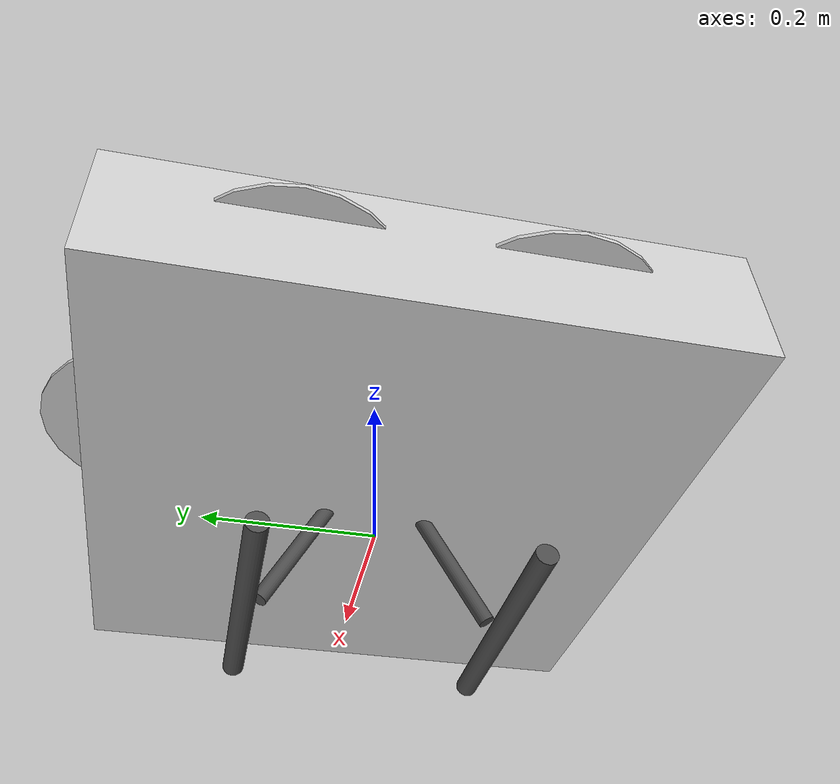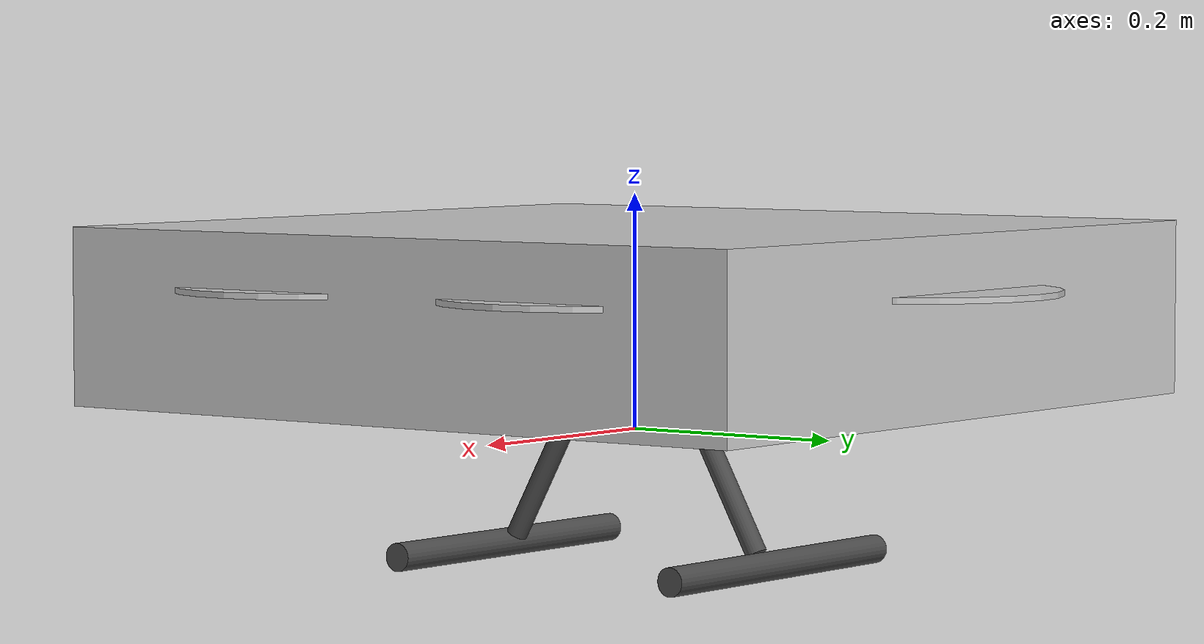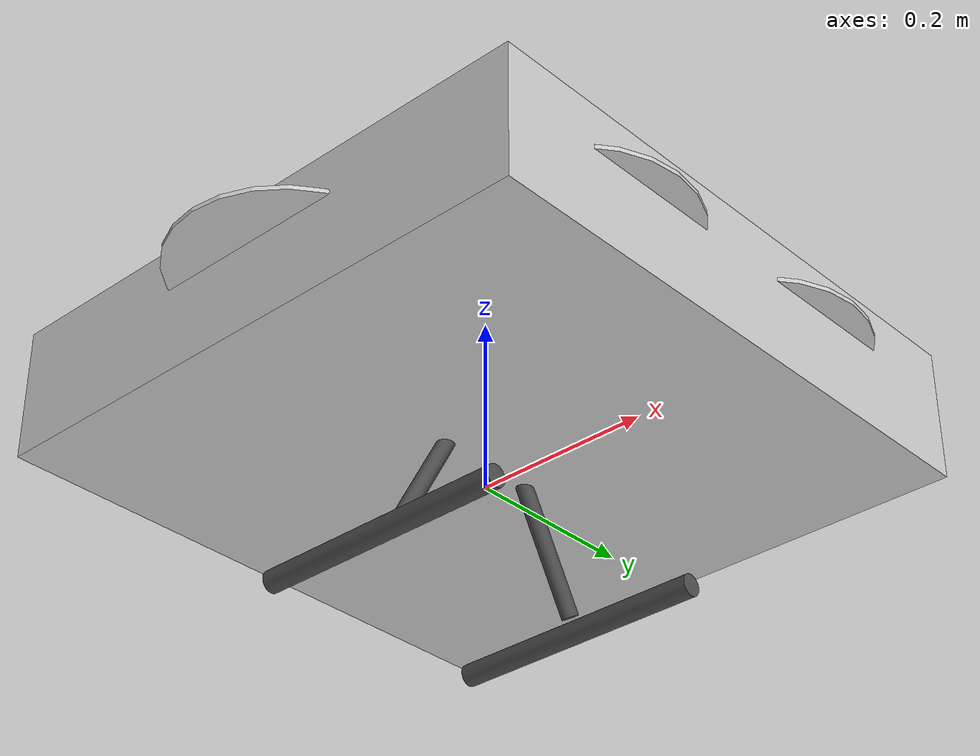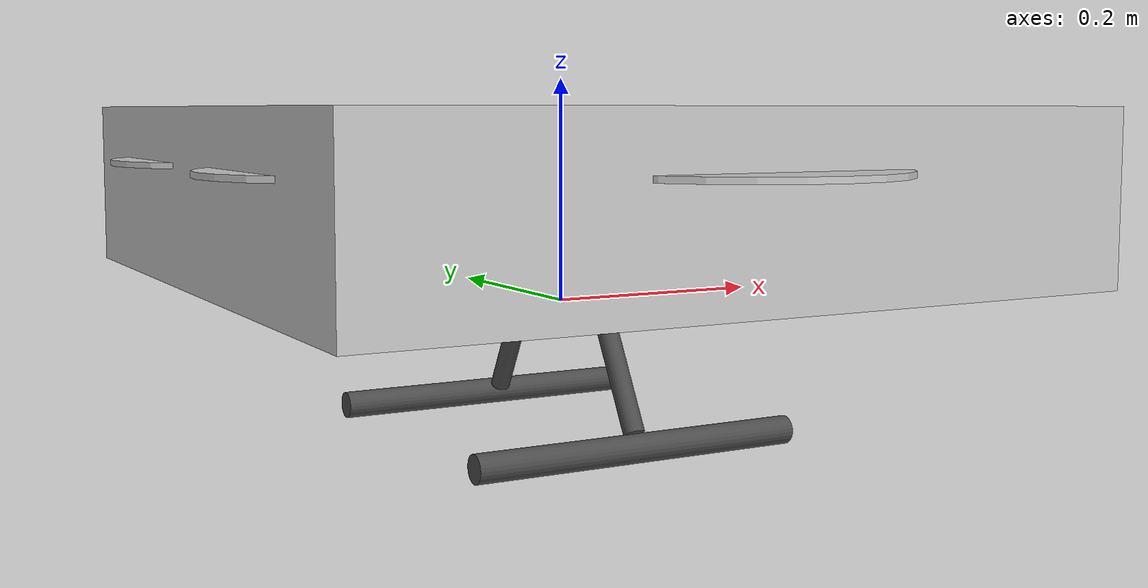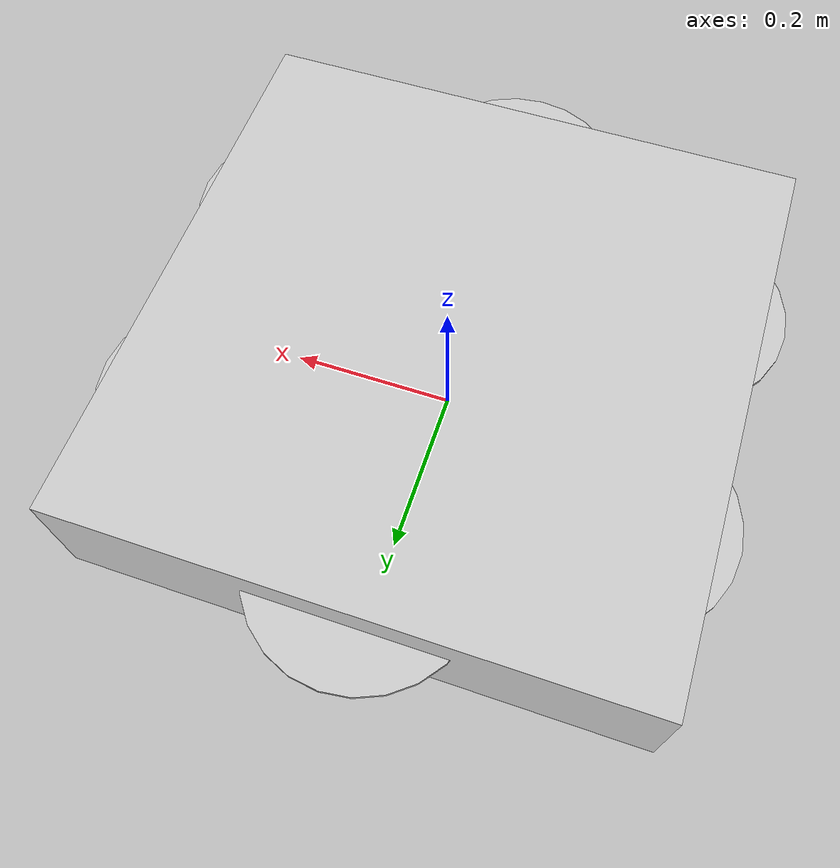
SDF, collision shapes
<?xml version='1.0'?>
<sdf version="1.9">
  <model name="DJI550_with_ardupilot">
    <include>
      <uri>model://DJI550_with_standoffs</uri>
    </include>

    <!--
      visual markers for debugging
      - blade root    - teal
      - blade tip     - orange
      - blade cp      - yellow
      - blade forward - red
      - blade upward  - blue
    -->

    <!-- plugins -->
    <plugin filename="gz-sim-joint-state-publisher-system"
      name="gz::sim::systems::JointStatePublisher">
    </plugin>
    <plugin filename="gz-sim-lift-drag-system"
        name="gz::sim::systems::LiftDrag">
      <a0>0.3</a0>
      <alpha_stall>1.4</alpha_stall>
      <cla>4.2500</cla>
      <cda>0.10</cda>
      <cma>0.0</cma>
      <cla_stall>-0.025</cla_stall>
      <cda_stall>0.0</cda_stall>
      <cma_stall>0.0</cma_stall>
      <area>0.0035</area>
      <air_density>1.2041</air_density>
      <cp>0.084 0 0</cp>
      <forward>0 1 0</forward>
      <upward>0 0 1</upward>
      <link_name>DJI550_with_standoffs::rotor_0</link_name>
    </plugin>
    <plugin filename="gz-sim-lift-drag-system"
        name="gz::sim::systems::LiftDrag">
      <a0>0.3</a0>
      <alpha_stall>1.4</alpha_stall>
      <cla>4.2500</cla>
      <cda>0.10</cda>
      <cma>0.0</cma>
      <cla_stall>-0.025</cla_stall>
      <cda_stall>0.0</cda_stall>
      <cma_stall>0.0</cma_stall>
      <area>0.0035</area>
      <air_density>1.2041</air_density>
      <cp>-0.084 0 0</cp>
      <forward>0 -1 0</forward>
      <upward>0 0 1</upward>
      <link_name>DJI550_with_standoffs::rotor_0</link_name>
    </plugin>

    <plugin filename="gz-sim-lift-drag-system"
        name="gz::sim::systems::LiftDrag">
      <a0>0.3</a0>
      <alpha_stall>1.4</alpha_stall>
      <cla>4.2500</cla>
      <cda>0.10</cda>
      <cma>0.0</cma>
      <cla_stall>-0.025</cla_stall>
      <cda_stall>0.0</cda_stall>
      <cma_stall>0.0</cma_stall>
      <area>0.0035</area>
      <air_density>1.2041</air_density>
      <cp>0.084 0 0</cp>
      <forward>0 -1 0</forward>
      <upward>0 0 1</upward>
      <link_name>DJI550_with_standoffs::rotor_1</link_name>
    </plugin>
    <plugin filename="gz-sim-lift-drag-system"
        name="gz::sim::systems::LiftDrag">
      <a0>0.3</a0>
      <alpha_stall>1.4</alpha_stall>
      <cla>4.2500</cla>
      <cda>0.10</cda>
      <cma>0.0</cma>
      <cla_stall>-0.025</cla_stall>
      <cda_stall>0.0</cda_stall>
      <cma_stall>0.0</cma_stall>
      <area>0.0035</area>
      <air_density>1.2041</air_density>
      <cp>-0.084 0 0</cp>
      <forward>0 1 0</forward>
      <upward>0 0 1</upward>
      <link_name>DJI550_with_standoffs::rotor_1</link_name>
    </plugin>

    <plugin filename="gz-sim-lift-drag-system"
        name="gz::sim::systems::LiftDrag">
      <a0>0.3</a0>
      <alpha_stall>1.4</alpha_stall>
      <cla>4.2500</cla>
      <cda>0.10</cda>
      <cma>0.0</cma>
      <cla_stall>-0.025</cla_stall>
      <cda_stall>0.0</cda_stall>
      <cma_stall>0.0</cma_stall>
      <area>0.0035</area>
      <air_density>1.2041</air_density>
      <cp>0.084 0 0</cp>
      <forward>0 -1 0</forward>
      <upward>0 0 1</upward>
      <link_name>DJI550_with_standoffs::rotor_2</link_name>
    </plugin>
    <plugin filename="gz-sim-lift-drag-system"
        name="gz::sim::systems::LiftDrag">
      <a0>0.3</a0>
      <alpha_stall>1.4</alpha_stall>
      <cla>4.2500</cla>
      <cda>0.10</cda>
      <cma>0.0</cma>
      <cla_stall>-0.025</cla_stall>
      <cda_stall>0.0</cda_stall>
      <cma_stall>0.0</cma_stall>
      <area>0.0035</area>
      <air_density>1.2041</air_density>
      <cp>-0.084 0 0</cp>
      <forward>0 1 0</forward>
      <upward>0 0 1</upward>
      <link_name>DJI550_with_standoffs::rotor_2</link_name>
    </plugin>

    <plugin filename="gz-sim-lift-drag-system"
        name="gz::sim::systems::LiftDrag">
      <a0>0.3</a0>
      <alpha_stall>1.4</alpha_stall>
      <cla>4.2500</cla>
      <cda>0.10</cda>
      <cma>0.0</cma>
      <cla_stall>-0.025</cla_stall>
      <cda_stall>0.0</cda_stall>
      <cma_stall>0.0</cma_stall>
      <area>0.0035</area>
      <air_density>1.2041</air_density>
      <cp>0.084 0 0</cp>
      <forward>0 1 0</forward>
      <upward>0 0 1</upward>
      <link_name>DJI550_with_standoffs::rotor_3</link_name>
    </plugin>
    <plugin filename="gz-sim-lift-drag-system"
        name="gz::sim::systems::LiftDrag">
      <a0>0.3</a0>
      <alpha_stall>1.4</alpha_stall>
      <cla>4.2500</cla>
      <cda>0.10</cda>
      <cma>0.0</cma>
      <cla_stall>-0.025</cla_stall>
      <cda_stall>0.0</cda_stall>
      <cma_stall>0.0</cma_stall>
      <area>0.0035</area>
      <air_density>1.2041</air_density>
      <cp>-0.084 0 0</cp>
      <forward>0 -1 0</forward>
      <upward>0 0 1</upward>
      <link_name>DJI550_with_standoffs::rotor_3</link_name>
    </plugin>

    <plugin filename="gz-sim-lift-drag-system"
        name="gz::sim::systems::LiftDrag">
      <a0>0.3</a0>
      <alpha_stall>1.4</alpha_stall>
      <cla>4.2500</cla>
      <cda>0.10</cda>
      <cma>0.0</cma>
      <cla_stall>-0.025</cla_stall>
      <cda_stall>0.0</cda_stall>
      <cma_stall>0.0</cma_stall>
      <area>0.0035</area>
      <air_density>1.2041</air_density>
      <cp>0.084 0 0</cp>
      <forward>0 -1 0</forward>
      <upward>0 0 1</upward>
      <link_name>DJI550_with_standoffs::rotor_4</link_name>
    </plugin>
    <plugin filename="gz-sim-lift-drag-system"
        name="gz::sim::systems::LiftDrag">
      <a0>0.3</a0>
      <alpha_stall>1.4</alpha_stall>
      <cla>4.2500</cla>
      <cda>0.10</cda>
      <cma>0.0</cma>
      <cla_stall>-0.025</cla_stall>
      <cda_stall>0.0</cda_stall>
      <cma_stall>0.0</cma_stall>
      <area>0.0035</area>
      <air_density>1.2041</air_density>
      <cp>-0.084 0 0</cp>
      <forward>0 1 0</forward>
      <upward>0 0 1</upward>
      <link_name>DJI550_with_standoffs::rotor_4</link_name>
    </plugin>

    <plugin filename="gz-sim-lift-drag-system"
        name="gz::sim::systems::LiftDrag">
      <a0>0.3</a0>
      <alpha_stall>1.4</alpha_stall>
      <cla>4.2500</cla>
      <cda>0.10</cda>
      <cma>0.0</cma>
      <cla_stall>-0.025</cla_stall>
      <cda_stall>0.0</cda_stall>
      <cma_stall>0.0</cma_stall>
      <area>0.0035</area>
      <air_density>1.2041</air_density>
      <cp>0.084 0 0</cp>
      <forward>0 1 0</forward>
      <upward>0 0 1</upward>
      <link_name>DJI550_with_standoffs::rotor_5</link_name>
    </plugin>
    <plugin filename="gz-sim-lift-drag-system"
        name="gz::sim::systems::LiftDrag">
      <a0>0.3</a0>
      <alpha_stall>1.4</alpha_stall>
      <cla>4.2500</cla>
      <cda>0.10</cda>
      <cma>0.0</cma>
      <cla_stall>-0.025</cla_stall>
      <cda_stall>0.0</cda_stall>
      <cma_stall>0.0</cma_stall>
      <area>0.0035</area>
      <air_density>1.2041</air_density>
      <cp>-0.084 0 0</cp>
      <forward>0 -1 0</forward>
      <upward>0 0 1</upward>
      <link_name>DJI550_with_standoffs::rotor_5</link_name>
    </plugin>

    <plugin filename="gz-sim-apply-joint-force-system"
      name="gz::sim::systems::ApplyJointForce">
      <joint_name>DJI550_with_standoffs::rotor_0_joint</joint_name>
    </plugin>
    <plugin filename="gz-sim-apply-joint-force-system"
      name="gz::sim::systems::ApplyJointForce">
      <joint_name>DJI550_with_standoffs::rotor_1_joint</joint_name>
    </plugin>
    <plugin filename="gz-sim-apply-joint-force-system"
      name="gz::sim::systems::ApplyJointForce">
      <joint_name>DJI550_with_standoffs::rotor_2_joint</joint_name>
    </plugin>
    <plugin filename="gz-sim-apply-joint-force-system"
      name="gz::sim::systems::ApplyJointForce">
      <joint_name>DJI550_with_standoffs::rotor_3_joint</joint_name>
    </plugin>
    <plugin filename="gz-sim-apply-joint-force-system"
      name="gz::sim::systems::ApplyJointForce">
      <joint_name>DJI550_with_standoffs::rotor_4_joint</joint_name>
    </plugin>
    <plugin filename="gz-sim-apply-joint-force-system"
      name="gz::sim::systems::ApplyJointForce">
      <joint_name>DJI550_with_standoffs::rotor_5_joint</joint_name>
    </plugin>

    <plugin name="ArduPilotPlugin"
      filename="ArduPilotPlugin">
      <!-- Port settings -->
      <fdm_addr>127.0.0.1</fdm_addr>
      <fdm_port_in>9002</fdm_port_in>
      <connectionTimeoutMaxCount>5</connectionTimeoutMaxCount>
      <lock_step>1</lock_step>
      <no_time_sync>1</no_time_sync>
      <have_32_channels>0</have_32_channels>

      <!-- Frame conventions
        Require by ArduPilot: change model and gazebo from XYZ to XY-Z coordinates
      -->
      <modelXYZToAirplaneXForwardZDown degrees="true">0 0 0 180 0 0</modelXYZToAirplaneXForwardZDown>
      <gazeboXYZToNED degrees="true">0 0 0 180 0 0</gazeboXYZToNED>

      <!-- Sensors -->
      <imuName>DJI550_with_standoffs::imu_link::imu_sensor</imuName>

      <!--
          incoming control command [0, 1]
          so offset it by 0 to get [0, 1]
          and divide max target by 1.
          offset = 0
          multiplier = 838 max rpm / 1 = 838
        -->
      <control channel="0">
        <jointName>DJI550_with_standoffs::rotor_4_joint</jointName>
        <useForce>1</useForce>
        <multiplier>-1032</multiplier>
        <offset>0</offset>
        <servo_min>1100</servo_min>
        <servo_max>1900</servo_max>
        <type>VELOCITY</type>
        <p_gain>0.50</p_gain>
        <i_gain>0</i_gain>
        <d_gain>0</d_gain>
        <i_max>0</i_max>
        <i_min>0</i_min>
        <cmd_max>2.5</cmd_max>
        <cmd_min>-2.5</cmd_min>
        <controlVelocitySlowdownSim>1</controlVelocitySlowdownSim>
      </control>

      <control channel="1">
        <jointName>DJI550_with_standoffs::rotor_5_joint</jointName>
        <useForce>1</useForce>
        <multiplier>1032</multiplier>
        <offset>0</offset>
        <servo_min>1100</servo_min>
        <servo_max>1900</servo_max>
        <type>VELOCITY</type>
        <p_gain>0.50</p_gain>
        <i_gain>0</i_gain>
        <d_gain>0</d_gain>
        <i_max>0</i_max>
        <i_min>0</i_min>
        <cmd_max>2.5</cmd_max>
        <cmd_min>-2.5</cmd_min>
        <controlVelocitySlowdownSim>1</controlVelocitySlowdownSim>
      </control>

      <control channel="2">
        <jointName>DJI550_with_standoffs::rotor_2_joint</jointName>
        <useForce>1</useForce>
        <multiplier>-1032</multiplier>
        <offset>0</offset>
        <servo_min>1100</servo_min>
        <servo_max>1900</servo_max>
        <type>VELOCITY</type>
        <p_gain>0.50</p_gain>
        <i_gain>0</i_gain>
        <d_gain>0</d_gain>
        <i_max>0</i_max>
        <i_min>0</i_min>
        <cmd_max>2.5</cmd_max>
        <cmd_min>-2.5</cmd_min>
        <controlVelocitySlowdownSim>1</controlVelocitySlowdownSim>
      </control>

      <control channel="3">
        <jointName>DJI550_with_standoffs::rotor_3_joint</jointName>
        <useForce>1</useForce>
        <multiplier>1032</multiplier>
        <offset>0</offset>
        <servo_min>1100</servo_min>
        <servo_max>1900</servo_max>
        <type>VELOCITY</type>
        <p_gain>0.50</p_gain>
        <i_gain>0</i_gain>
        <d_gain>0</d_gain>
        <i_max>0</i_max>
        <i_min>0</i_min>
        <cmd_max>2.5</cmd_max>
        <cmd_min>-2.5</cmd_min>
        <controlVelocitySlowdownSim>1</controlVelocitySlowdownSim>
      </control>

      <control channel="4">
        <jointName>DJI550_with_standoffs::rotor_0_joint</jointName>
        <useForce>1</useForce>
        <multiplier>1032</multiplier>
        <offset>0</offset>
        <servo_min>1100</servo_min>
        <servo_max>1900</servo_max>
        <type>VELOCITY</type>
        <p_gain>0.50</p_gain>
        <i_gain>0</i_gain>
        <d_gain>0</d_gain>
        <i_max>0</i_max>
        <i_min>0</i_min>
        <cmd_max>2.5</cmd_max>
        <cmd_min>-2.5</cmd_min>
        <controlVelocitySlowdownSim>1</controlVelocitySlowdownSim>
      </control>

      <control channel="5">
        <jointName>DJI550_with_standoffs::rotor_1_joint</jointName>
        <useForce>1</useForce>
        <multiplier>-1032</multiplier>
        <offset>0</offset>
        <servo_min>1100</servo_min>
        <servo_max>1900</servo_max>
        <type>VELOCITY</type>
        <p_gain>0.50</p_gain>
        <i_gain>0</i_gain>
        <d_gain>0</d_gain>
        <i_max>0</i_max>
        <i_min>0</i_min>
        <cmd_max>2.5</cmd_max>
        <cmd_min>-2.5</cmd_min>
        <controlVelocitySlowdownSim>1</controlVelocitySlowdownSim>
      </control>

    </plugin>

  </model>
</sdf>

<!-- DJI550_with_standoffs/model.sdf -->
<sdf version="1.6">
    <model name='DJI550_with_standoffs'>
    <!-- Typhoon H body -->
    <pose>0.0 0.0 0.1 0 0 0</pose>
    <link name='base_link'>
      <pose frame=''>0 0 0 0 -0 0</pose>
      <inertial>
        <pose frame=''>0.001005 0 -0.0090035 0 -0 0</pose>
        <!-- masa original Typhoon base_link 2.02 -->
        <mass>2.6</mass>
        <inertia>
          <ixx>0.026</ixx>
          <ixy>0</ixy>
          <ixz>0</ixz>
          <iyy>0.026</iyy>
          <iyz>0</iyz>
          <izz>0.0515</izz>
        </inertia>
      </inertial>
      <collision name='base_link_collision'>
        <pose frame=''>0 0 0.0 0 0 0</pose>
        <geometry>
          <box>
            <size>0.67 0.67 0.15</size>
          </box>
        </geometry>
        <surface>
          <contact>
            <ode>
              <min_depth>0.001</min_depth>
              <max_vel>0</max_vel>
            </ode>
          </contact>
          <friction>
            <ode/>
          </friction>
        </surface>
      </collision>
      <visual name="body_visual">
        <pose>0 0 0 0 0 0.524</pose>
        <geometry>
          <mesh><uri>model://DJI550_with_standoffs/meshes/dji_f550_central_board.dae</uri></mesh>
        </geometry>
	<material>
          <ambient>0.8 0.8 0.8 1</ambient>
          <diffuse>0.8 0.8 0.8 1</diffuse>
          <specular>0.5 0.5 0.5 1</specular>
          <pbr>
            <metal>
              <albedo_map>model://DJI550_with_standoffs/materials/textures/Carbon.jpg</albedo_map>
            </metal>
          </pbr>
        </material>
      </visual>

      <visual name="arm_0_visual">
        <pose>0 -0.11 0.0 0 0 -1.5708</pose>
        <geometry>
          <mesh><uri>model://DJI550_with_standoffs/meshes/dji_f550_arm.dae</uri></mesh>
        </geometry>
	<material>
          <ambient>0.8 0.8 0.8 1</ambient>
          <diffuse>0.8 0.8 0.8 1</diffuse>
          <specular>0.2 0.2 0.2 1</specular>
          <pbr>
            <metal>
              <albedo_map>model://DJI550_with_standoffs/materials/textures/Marfil.jpg</albedo_map>
            </metal>
          </pbr>
        </material>
      </visual>

      <visual name="motor_0_stator_visual">
        <pose>0 -0.275 0.0 0 0 0</pose>
        <geometry>
          <mesh><uri>model://DJI550_with_standoffs/meshes/dji_f550_rotor.dae</uri></mesh>
        </geometry>
	<material>
          <ambient>0.8 0.8 0.8 1</ambient>
          <diffuse>0.8 0.8 0.8 1</diffuse>
          <specular>0.5 0.5 0.5 1</specular>
          <pbr>
            <metal>
              <albedo_map>model://DJI550_with_standoffs/materials/textures/Black.jpg</albedo_map>
            </metal>
          </pbr>
        </material>
      </visual>

      <visual name="arm_1_visual">
        <pose>0 0.11 0.0 0 0 1.5708</pose>
        <geometry>
          <mesh><uri>model://DJI550_with_standoffs/meshes/dji_f550_arm.dae</uri></mesh>
        </geometry>
	<material>
          <ambient>0.8 0.8 0.8 1</ambient>
          <diffuse>0.8 0.8 0.8 1</diffuse>
          <specular>0.2 0.2 0.2 1</specular>
          <pbr>
            <metal>
              <albedo_map>model://DJI550_with_standoffs/materials/textures/Marfil.jpg</albedo_map>
            </metal>
          </pbr>
        </material>
      </visual>

      <visual name="motor_1_stator_visual">
        <pose>0 0.275 0.0 0 0 0</pose>
        <geometry>
          <mesh><uri>model://DJI550_with_standoffs/meshes/dji_f550_rotor.dae</uri></mesh>
        </geometry>
	<material>
          <ambient>0.8 0.8 0.8 1</ambient>
          <diffuse>0.8 0.8 0.8 1</diffuse>
          <specular>0.5 0.5 0.5 1</specular>
          <pbr>
            <metal>
              <albedo_map>model://DJI550_with_standoffs/materials/textures/Black.jpg</albedo_map>
            </metal>
          </pbr>
        </material>
      </visual>

      <visual name="arm_2_visual">
        <pose>0.09526275000000001 -0.055 0.0 0 0 -0.5236</pose>
        <geometry>
          <mesh><uri>model://DJI550_with_standoffs/meshes/dji_f550_arm.dae</uri></mesh>
        </geometry>
	<material>
          <ambient>0.8 0.8 0.8 1</ambient>
          <diffuse>0.8 0.8 0.8 1</diffuse>
          <specular>0.2 0.2 0.2 1</specular>
          <pbr>
            <metal>
              <albedo_map>model://DJI550_with_standoffs/materials/textures/Black.jpg</albedo_map>
            </metal>
          </pbr>
        </material>
      </visual>

      <visual name="motor_2_stator_visual">
        <pose>0.23815687500000002 0.1375 0.0 0 0 0</pose>
        <geometry>
          <mesh><uri>model://DJI550_with_standoffs/meshes/dji_f550_rotor.dae</uri></mesh>
        </geometry>
	<material>
          <ambient>0.8 0.8 0.8 1</ambient>
          <diffuse>0.8 0.8 0.8 1</diffuse>
          <specular>0.5 0.5 0.5 1</specular>
          <pbr>
            <metal>
              <albedo_map>model://DJI550_with_standoffs/materials/textures/Black.jpg</albedo_map>
            </metal>
          </pbr>
        </material>
      </visual>

      <visual name="arm_3_visual">
        <pose>-0.09526275000000001 0.055 0.0 0 0 2.618</pose>
        <geometry>
          <mesh><uri>model://DJI550_with_standoffs/meshes/dji_f550_arm.dae</uri></mesh>
        </geometry>
	<material>
          <ambient>0.8 0.8 0.8 1</ambient>
          <diffuse>0.8 0.8 0.8 1</diffuse>
          <specular>0.2 0.2 0.2 1</specular>
          <pbr>
            <metal>
              <albedo_map>model://DJI550_with_standoffs/materials/textures/DarkRed.jpg</albedo_map>
            </metal>
          </pbr>
        </material>
      </visual>

      <visual name="motor_3_stator_visual">
        <pose>-0.23815687500000002 -0.1375 0.0 0 0 0</pose>
        <geometry>
          <mesh><uri>model://DJI550_with_standoffs/meshes/dji_f550_rotor.dae</uri></mesh>
        </geometry>
	<material>
          <ambient>0.8 0.8 0.8 1</ambient>
          <diffuse>0.8 0.8 0.8 1</diffuse>
          <specular>0.5 0.5 0.5 1</specular>
          <pbr>
            <metal>
              <albedo_map>model://DJI550_with_standoffs/materials/textures/Black.jpg</albedo_map>
            </metal>
          </pbr>
        </material>
      </visual>

      <visual name="arm_4_visual">
        <pose>0.09526275000000001 0.055 0.0 0 0 0.5236</pose>
        <geometry>
          <mesh><uri>model://DJI550_with_standoffs/meshes/dji_f550_arm.dae</uri></mesh>
        </geometry>
	<material>
          <ambient>0.8 0.8 0.8 1</ambient>
          <diffuse>0.8 0.8 0.8 1</diffuse>
          <specular>0.2 0.2 0.2 1</specular>
          <pbr>
            <metal>
              <albedo_map>model://DJI550_with_standoffs/materials/textures/Black.jpg</albedo_map>
            </metal>
          </pbr>
        </material>
      </visual>

      <visual name="motor_4_stator_visual">
        <pose>0.23815687500000002 -0.1375 0.0 0 0 0</pose>
        <geometry>
          <mesh><uri>model://DJI550_with_standoffs/meshes/dji_f550_rotor.dae</uri></mesh>
        </geometry>
	<material>
          <ambient>0.8 0.8 0.8 1</ambient>
          <diffuse>0.8 0.8 0.8 1</diffuse>
          <specular>0.5 0.5 0.5 1</specular>
          <pbr>
            <metal>
              <albedo_map>model://DJI550_with_standoffs/materials/textures/Black.jpg</albedo_map>
            </metal>
          </pbr>
        </material>
      </visual>

      <visual name="arm_5_visual">
        <pose>-0.09526275000000001 -0.055 0.0 0 0 -2.618</pose>
        <geometry>
          <mesh><uri>model://DJI550_with_standoffs/meshes/dji_f550_arm.dae</uri></mesh>
        </geometry>
	<material>
          <ambient>0.8 0.8 0.8 1</ambient>
          <diffuse>0.8 0.8 0.8 1</diffuse>
          <specular>0.2 0.2 0.2 1</specular>
          <pbr>
            <metal>
              <albedo_map>model://DJI550_with_standoffs/materials/textures/DarkRed.jpg</albedo_map>
            </metal>
          </pbr>
        </material>
      </visual>

      <visual name="motor_5_stator_visual">
        <pose>-0.23815687500000002 0.1375 0.0 0 0 0</pose>
        <geometry>
          <mesh><uri>model://DJI550_with_standoffs/meshes/dji_f550_rotor.dae</uri></mesh>
        </geometry>
	<material>
          <ambient>0.8 0.8 0.8 1</ambient>
          <diffuse>0.8 0.8 0.8 1</diffuse>
          <specular>0.5 0.5 0.5 1</specular>
          <pbr>
            <metal>
              <albedo_map>model://DJI550_with_standoffs/materials/textures/Black.jpg</albedo_map>
            </metal>
          </pbr>
        </material>
      </visual>
    </link>

    <link name="left_leg">
      <inertial>
        <!-- place holder -->
        <pose frame=''>0 -0.14314 -0.207252 0 -0 0</pose>
        <mass>0.1</mass>
        <inertia>
          <ixx>0.001</ixx>
          <ixy>0</ixy>
          <ixz>0</ixz>
          <iyy>0.001</iyy>
          <iyz>0</iyz>
          <izz>0.001</izz>
        </inertia>
      </inertial>
      <collision name='collision'>
        <pose frame=''>-0.005 -0.14314 -0.207252 0 1.56893 0</pose>
        <geometry>
          <cylinder>
            <radius>0.012209</radius>
            <length>0.3</length>
          </cylinder>
        </geometry>
        <surface>
          <friction>
            <ode>
              <mu>1</mu>
              <mu2>1</mu2>
            </ode>
          </friction>
          <contact>
            <ode>
              <kp>1e+8</kp>
              <kd>1</kd>
              <max_vel>0.01</max_vel>
              <min_depth>0.001</min_depth>
            </ode>
          </contact>
        </surface>
      </collision>
      <collision name='collision_bar'>
        <pose frame=''>0.00052 -0.08503 -0.121187 -0.501318 0 0</pose>
        <geometry>
          <cylinder>
            <radius>0.00914984</radius>
            <length>0.176893</length>
          </cylinder>
        </geometry>
        <surface>
          <friction>
            <ode>
              <mu>1</mu>
              <mu2>1</mu2>
            </ode>
          </friction>
          <contact>
            <ode>
              <kp>1e+8</kp>
              <kd>1</kd>
              <max_vel>0.01</max_vel>
              <min_depth>0.001</min_depth>
            </ode>
          </contact>
        </surface>
      </collision>
      <visual name='base_link_left_leg'>
        <pose frame=''>0 0 0 0 -0 0</pose>
        <geometry>
          <mesh>
            <scale>0.001 0.001 0.001</scale>
            <uri>model://DJI550_with_standoffs/meshes/leg2_remeshed_v3.stl</uri>
          </mesh>
        </geometry>
        <material>
          <lighting>1</lighting>
            <script>
              <uri>file://media/materials/scripts/gazebo.material</uri>
              <name>Gazebo/DarkGrey</name>
            </script>
            <ambient>0.3 0.3 0.3 1</ambient>
            <diffuse>0.7 0.7 0.7 1</diffuse>
            <specular>0.01 0.01 0.01 1</specular>
            <emissive>0 0 0 1</emissive>
        </material>
      </visual>
    </link>
    <joint name='left_leg_joint' type='fixed'>
      <child>left_leg</child>
      <parent>base_link</parent>
      <pose frame=''>0.00026 -0.040515 -0.048 0 0 0</pose>
      <axis>
        <xyz>-1 0 0</xyz>
        <limit>
          <lower>0</lower>
          <upper>1</upper>
          <effort>100</effort>
          <velocity>-1</velocity>
          <stiffness>100000000</stiffness>
          <dissipation>1</dissipation>
        </limit>
        <dynamics>
          <damping>0.1</damping>
        </dynamics>
        <use_parent_model_frame>1</use_parent_model_frame>
      </axis>
      <physics>
        <ode>
          <implicit_spring_damper>1</implicit_spring_damper>
        </ode>
      </physics>
    </joint>

    <link name="right_leg">
      <pose frame=''>0 0 0 0 -0 0</pose>
      <inertial>
        <!-- place holder -->
        <pose frame=''>0 0.14314 -0.207252 0 0 0</pose>
        <mass>0.1</mass>
        <inertia>
          <ixx>0.001</ixx>
          <ixy>0</ixy>
          <ixz>0</ixz>
          <iyy>0.001</iyy>
          <iyz>0</iyz>
          <izz>0.001</izz>
        </inertia>
      </inertial>
      <collision name='collision'>
        <pose frame=''>-0.005 0.14314 -0.207252 0 1.56893 0</pose>
        <geometry>
          <cylinder>
            <radius>0.012209</radius>
            <length>0.3</length>
          </cylinder>
        </geometry>
        <surface>
          <friction>
            <ode>
              <mu>1</mu>
              <mu2>1</mu2>
            </ode>
          </friction>
          <contact>
            <ode>
              <kp>1e+8</kp>
              <kd>1</kd>
              <max_vel>0.01</max_vel>
              <min_depth>0.001</min_depth>
            </ode>
          </contact>
        </surface>
      </collision>
      <collision name='collision_bar'>
        <pose frame=''>0.00052 0.08503 -0.121187 0.501318 0 0</pose>
        <geometry>
          <cylinder>
            <radius>0.00914984</radius>
            <length>0.176893</length>
          </cylinder>
        </geometry>
        <surface>
          <friction>
            <ode>
              <mu>1</mu>
              <mu2>1</mu2>
            </ode>
          </friction>
          <contact>
            <ode>
              <kp>1e+8</kp>
              <kd>1</kd>
              <max_vel>0.01</max_vel>
              <min_depth>0.001</min_depth>
            </ode>
          </contact>
        </surface>
      </collision>
      <visual name='base_link_right_leg'>
        <pose frame=''>0 0 0 0 -0 0</pose>
        <geometry>
          <mesh>
            <scale>0.001 0.001 0.001</scale>
            <uri>model://DJI550_with_standoffs/meshes/leg1_remeshed_v3.stl</uri>
          </mesh>
        </geometry>
        <material>
          <lighting>1</lighting>
            <script>
              <uri>file://media/materials/scripts/gazebo.material</uri>
              <name>Gazebo/DarkGrey</name>
            </script>
            <ambient>0.3 0.3 0.3 1</ambient>
            <diffuse>0.7 0.7 0.7 1</diffuse>
            <specular>0.01 0.01 0.01 1</specular>
            <emissive>0 0 0 1</emissive>
        </material>
      </visual>
    </link>
    <joint name='right_leg_joint' type='fixed'>
      <child>right_leg</child>
      <parent>base_link</parent>
      <pose frame=''>0.00026 0.040515 -0.048 0 0 0</pose>
      <axis>
        <xyz>1 0 0</xyz>
        <limit>
          <lower>0</lower>
          <upper>1</upper>
          <effort>100</effort>
          <velocity>-1</velocity>
          <stiffness>100000000</stiffness>
          <dissipation>1</dissipation>
        </limit>
        <dynamics>
          <damping>0.1</damping>
        </dynamics>
        <use_parent_model_frame>1</use_parent_model_frame>
      </axis>
      <physics>
        <ode>
          <implicit_spring_damper>1</implicit_spring_damper>
        </ode>
      </physics>
    </joint>

    <link name='imu_link'>
      <pose frame=''>0 0 0 0 0 3.1415927</pose>
      <inertial>
        <pose frame=''>0 0 0 0 -0 0</pose>
        <mass>0.015</mass>
        <inertia>
          <ixx>1e-05</ixx>
          <ixy>0</ixy>
          <ixz>0</ixz>
          <iyy>1e-05</iyy>
          <iyz>0</iyz>
          <izz>1e-05</izz>
        </inertia>
      </inertial>
      <sensor name="imu_sensor" type="imu">
        <gz_frame_id>imu_link</gz_frame_id>
        <pose degrees="true">0 0 0 180 0 0</pose>
        <always_on>1</always_on>
        <update_rate>1000.0</update_rate>
      </sensor>
    </link>
    <joint name='imu_joint' type='revolute'>
      <child>imu_link</child>
      <parent>base_link</parent>
      <axis>
        <xyz>1 0 0</xyz>
        <limit>
          <lower>0</lower>
          <upper>0</upper>
          <effort>0</effort>
          <velocity>0</velocity>
        </limit>
        <dynamics>
          <spring_reference>0</spring_reference>
          <spring_stiffness>0</spring_stiffness>
        </dynamics>
        <use_parent_model_frame>1</use_parent_model_frame>
      </axis>
    </joint>
    <link name='rotor_3'>
      <pose frame=''>0.2381 0.1375 0.026 0 0 0</pose>

      <inertial>
        <mass>0.017</mass>
        <inertia>
          <ixx>5e-05</ixx><iyy>5e-05</iyy><izz>9.5e-05</izz>
        </inertia>
      </inertial>
      <collision name='rotor_3_collision'>
        <pose frame=''>0 0 0 0 -0 0</pose>
        <geometry>
          <cylinder>
            <length>0.005</length>
            <radius>0.128</radius>
          </cylinder>
        </geometry>
        <surface>
          <contact>
            <ode/>
          </contact>
          <friction>
            <ode/>
          </friction>
        </surface>
      </collision>
      <visual name="rotor_3_visual">
        <geometry>
          <mesh>
            <uri>model://DJI550_with_standoffs/meshes/dji_f550_prop.dae</uri>
            <scale>1 1 1</scale>
          </mesh>
        </geometry>
	<material>
          <ambient>0.8 0.8 0.8 1</ambient>
          <diffuse>0.8 0.8 0.8 1</diffuse>
          <specular>0.5 0.5 0.5 1</specular>
          <pbr>
            <metal>
              <albedo_map>model://SIMAR/materials/textures/LightGrey.jpg</albedo_map>
            </metal>
          </pbr>
        </material>
      </visual>
      <gravity>1</gravity>
      <velocity_decay/>
      <self_collide>0</self_collide>
    </link>
    <joint name='rotor_3_joint' type='revolute'>
      <child>rotor_3</child>
      <parent>base_link</parent>
      <axis>
        <xyz>0 0 1</xyz>
        <limit>
          <lower>-1e+16</lower>
          <upper>1e+16</upper>
          <effort>10</effort>
          <velocity>-1</velocity>
        </limit>
        <dynamics>
          <damping>0.005</damping>
        </dynamics>
        <use_parent_model_frame>1</use_parent_model_frame>
      </axis>
      <physics>
        <ode>
          <implicit_spring_damper>1</implicit_spring_damper>
        </ode>
      </physics>
    </joint>
    <link name='rotor_0'>
      <pose frame=''>-0.2381 0.1375 0.026 0 0 2.0944</pose>

      <inertial>
        <mass>0.017</mass>
        <inertia>
          <ixx>5e-05</ixx><iyy>5e-05</iyy><izz>9.5e-05</izz>
        </inertia>
      </inertial>
      <collision name='rotor_0_collision'>
        <pose frame=''>0 0 0 0 -0 0</pose>
        <geometry>
          <cylinder>
            <length>0.005</length>
            <radius>0.128</radius>
          </cylinder>
        </geometry>
        <surface>
          <contact>
            <ode/>
          </contact>
          <friction>
            <ode/>
          </friction>
        </surface>
      </collision>
      <visual name="rotor_0_visual">
        <geometry>
          <mesh>
            <uri>model://DJI550_with_standoffs/meshes/dji_f550_prop.dae</uri>
            <scale>-1 1 1</scale>
          </mesh>
        </geometry>
	<material>
          <ambient>0.8 0.8 0.8 1</ambient>
          <diffuse>0.8 0.8 0.8 1</diffuse>
          <specular>0.5 0.5 0.5 1</specular>
          <pbr>
            <metal>
              <albedo_map>model://SIMAR/materials/textures/LightGrey.jpg</albedo_map>
            </metal>
          </pbr>
        </material>
      </visual>
      <gravity>1</gravity>
      <velocity_decay/>
      <self_collide>0</self_collide>
    </link>
    <joint name='rotor_0_joint' type='revolute'>
      <child>rotor_0</child>
      <parent>base_link</parent>
      <axis>
        <xyz>0 0 1</xyz>
        <limit>
          <lower>-1e+16</lower>
          <upper>1e+16</upper>
          <effort>10</effort>
          <velocity>-1</velocity>
        </limit>
        <dynamics>
          <damping>0.005</damping>
        </dynamics>
        <use_parent_model_frame>1</use_parent_model_frame>
      </axis>
      <physics>
        <ode>
          <implicit_spring_damper>1</implicit_spring_damper>
        </ode>
      </physics>
    </joint>
    <link name='rotor_4'>
      <pose frame=''>0 0.275 0.026 0 0 0</pose>

      <inertial>
        <mass>0.017</mass>
        <inertia>
          <ixx>5e-05</ixx><iyy>5e-05</iyy><izz>9.5e-05</izz>
        </inertia>
      </inertial>
      <collision name='rotor_4_collision'>
        <pose frame=''>0 0 0 0 -0 0</pose>
        <geometry>
          <cylinder>
            <length>0.005</length>
            <radius>0.128</radius>
          </cylinder>
        </geometry>
        <surface>
          <contact>
            <ode/>
          </contact>
          <friction>
            <ode/>
          </friction>
        </surface>
      </collision>
      <visual name="rotor_4_visual">
        <geometry>
          <mesh>
            <uri>model://DJI550_with_standoffs/meshes/dji_f550_prop.dae</uri>
            <scale>-1 1 1</scale>
          </mesh>
        </geometry>
	<material>
          <ambient>0.8 0.8 0.8 1</ambient>
          <diffuse>0.8 0.8 0.8 1</diffuse>
          <specular>0.5 0.5 0.5 1</specular>
          <pbr>
            <metal>
              <albedo_map>model://SIMAR/materials/textures/LightGrey.jpg</albedo_map>
            </metal>
          </pbr>
        </material>
      </visual>
      <gravity>1</gravity>
      <velocity_decay/>
      <self_collide>0</self_collide>
    </link>
    <joint name='rotor_4_joint' type='revolute'>
      <child>rotor_4</child>
      <parent>base_link</parent>
      <axis>
        <xyz>0 0 1</xyz>
        <limit>
          <lower>-1e+16</lower>
          <upper>1e+16</upper>
          <effort>10</effort>
          <velocity>-1</velocity>
        </limit>
        <dynamics>
          <damping>0.005</damping>
        </dynamics>
        <use_parent_model_frame>1</use_parent_model_frame>
      </axis>
      <physics>
        <ode>
          <implicit_spring_damper>1</implicit_spring_damper>
        </ode>
      </physics>
    </joint>
    <link name='rotor_1'>
      <pose frame=''>0.2381 -0.1375 0.026 0 0 -2.0944</pose>

      <inertial>
        <mass>0.017</mass>
        <inertia>
          <ixx>5e-05</ixx><iyy>5e-05</iyy><izz>9.5e-05</izz>
        </inertia>
      </inertial>
      <collision name='rotor_1_collision'>
        <pose frame=''>0 0 0 0 -0 0</pose>
        <geometry>
          <cylinder>
            <length>0.005</length>
            <radius>0.128</radius>
          </cylinder>
        </geometry>
        <surface>
          <contact>
            <ode/>
          </contact>
          <friction>
            <ode/>
          </friction>
        </surface>
      </collision>
      <visual name="rotor_1_visual">
        <geometry>
          <mesh>
            <uri>model://DJI550_with_standoffs/meshes/dji_f550_prop.dae</uri>
            <scale>-1 1 1</scale>
          </mesh>
        </geometry>
	<material>
          <ambient>0.8 0.8 0.8 1</ambient>
          <diffuse>0.8 0.8 0.8 1</diffuse>
          <specular>0.5 0.5 0.5 1</specular>
          <pbr>
            <metal>
              <albedo_map>model://SIMAR/materials/textures/LightGrey.jpg</albedo_map>
            </metal>
          </pbr>
        </material>
      </visual>
      <gravity>1</gravity>
      <velocity_decay/>
      <self_collide>0</self_collide>
    </link>
    <joint name='rotor_1_joint' type='revolute'>
      <child>rotor_1</child>
      <parent>base_link</parent>
      <axis>
        <xyz>0 0 1</xyz>
        <limit>
          <lower>-1e+16</lower>
          <upper>1e+16</upper>
          <effort>10</effort>
          <velocity>-1</velocity>
        </limit>
        <dynamics>
          <damping>0.005</damping>
        </dynamics>
        <use_parent_model_frame>1</use_parent_model_frame>
      </axis>
      <physics>
        <ode>
          <implicit_spring_damper>1</implicit_spring_damper>
        </ode>
      </physics>
    </joint>

    <link name='rotor_5'>
      <pose frame=''>0 -0.275 0.026 0 0 -2.0944</pose>

      <inertial>
        <mass>0.017</mass>
        <inertia>
          <ixx>5e-05</ixx><iyy>5e-05</iyy><izz>9.5e-05</izz>
        </inertia>
      </inertial>
      <collision name='rotor_5_collision'>
        <pose frame=''>0 0 0 0 -0 0</pose>
        <geometry>
          <cylinder>
            <length>0.005</length>
            <radius>0.128</radius>
          </cylinder>
        </geometry>
        <surface>
          <contact>
            <ode/>
          </contact>
          <friction>
            <ode/>
          </friction>
        </surface>
      </collision>
      <visual name="rotor_5_visual">
        <geometry>
          <mesh>
            <uri>model://DJI550_with_standoffs/meshes/dji_f550_prop.dae</uri>
            <scale>1 1 1</scale>
          </mesh>
        </geometry>
	<material>
          <ambient>0.8 0.8 0.8 1</ambient>
          <diffuse>0.8 0.8 0.8 1</diffuse>
          <specular>0.5 0.5 0.5 1</specular>
          <pbr>
            <metal>
              <albedo_map>model://SIMAR/materials/textures/LightGrey.jpg</albedo_map>
            </metal>
          </pbr>
        </material>
      </visual>
      <gravity>1</gravity>
      <velocity_decay/>
      <self_collide>0</self_collide>
    </link>
    <joint name='rotor_5_joint' type='revolute'>
      <child>rotor_5</child>
      <parent>base_link</parent>
      <axis>
        <xyz>0 0 1</xyz>
        <limit>
          <lower>-1e+16</lower>
          <upper>1e+16</upper>
          <effort>10</effort>
          <velocity>-1</velocity>
        </limit>
        <dynamics>
          <damping>0.005</damping>
        </dynamics>
        <use_parent_model_frame>1</use_parent_model_frame>
      </axis>
      <physics>
        <ode>
          <implicit_spring_damper>1</implicit_spring_damper>
        </ode>
      </physics>
    </joint>
    <link name='rotor_2'>
      <pose frame=''>-0.2381 -0.1375 0.026 0 0 2.0944</pose>

      <inertial>
        <mass>0.017</mass>
        <inertia>
          <ixx>5e-05</ixx><iyy>5e-05</iyy><izz>9.5e-05</izz>
        </inertia>
      </inertial>
      <collision name='rotor_2_collision'>
        <pose frame=''>0 0 0 0 -0 0</pose>
        <geometry>
          <cylinder>
            <length>0.005</length>
            <radius>0.128</radius>
          </cylinder>
        </geometry>
        <surface>
          <contact>
            <ode/>
          </contact>
          <friction>
            <ode/>
          </friction>
        </surface>
      </collision>
      <visual name="rotor_2_visual">
        <geometry>
          <mesh>
            <uri>model://DJI550_with_standoffs/meshes/dji_f550_prop.dae</uri>
            <scale>-1 1 1</scale>
          </mesh>
        </geometry>
	<material>
          <ambient>0.8 0.8 0.8 1</ambient>
          <diffuse>0.8 0.8 0.8 1</diffuse>
          <specular>0.5 0.5 0.5 1</specular>
          <pbr>
            <metal>
              <albedo_map>model://SIMAR/materials/textures/LightGrey.jpg</albedo_map>
            </metal>
          </pbr>
        </material>
      </visual>
      <gravity>1</gravity>
      <velocity_decay/>
      <self_collide>0</self_collide>
    </link>
    <joint name='rotor_2_joint' type='revolute'>
      <child>rotor_2</child>
      <parent>base_link</parent>
      <axis>
        <xyz>0 0 1</xyz>
        <limit>
          <lower>-1e+16</lower>
          <upper>1e+16</upper>
          <effort>10</effort>
          <velocity>-1</velocity>
        </limit>
        <dynamics>
          <damping>0.005</damping>
        </dynamics>
        <use_parent_model_frame>1</use_parent_model_frame>
      </axis>
      <physics>
        <ode>
          <implicit_spring_damper>1</implicit_spring_damper>
        </ode>
      </physics>
    </joint>
  </model>
</sdf>
